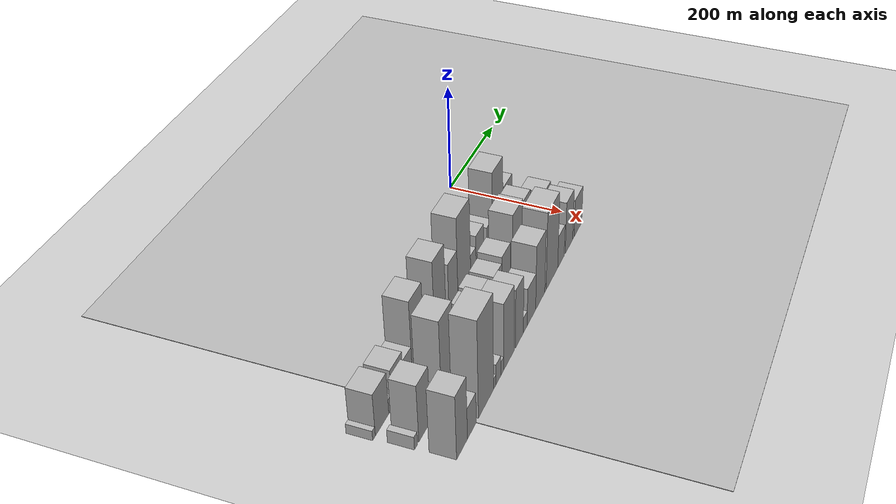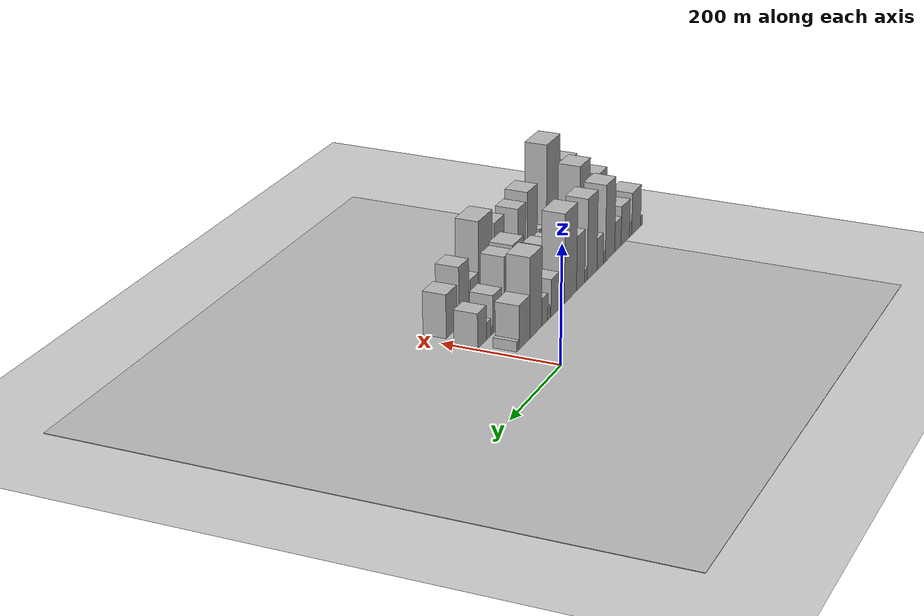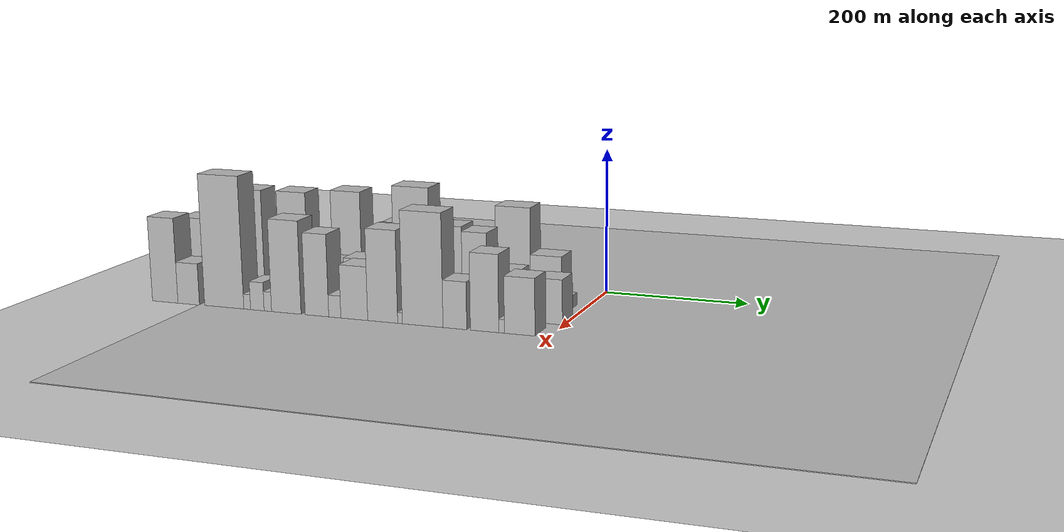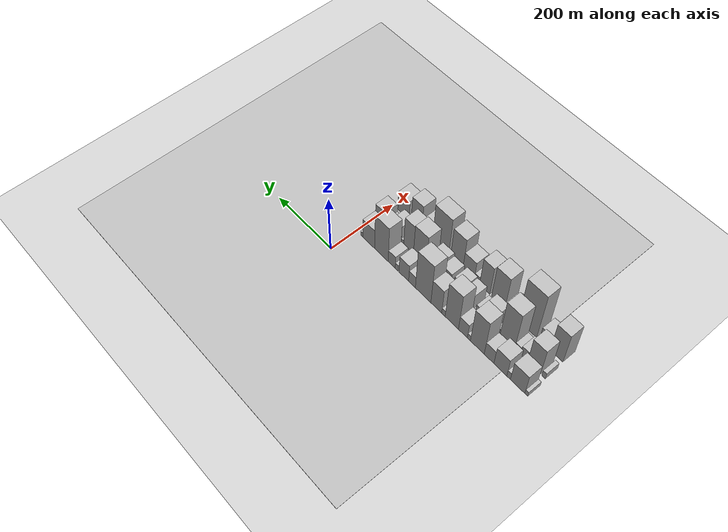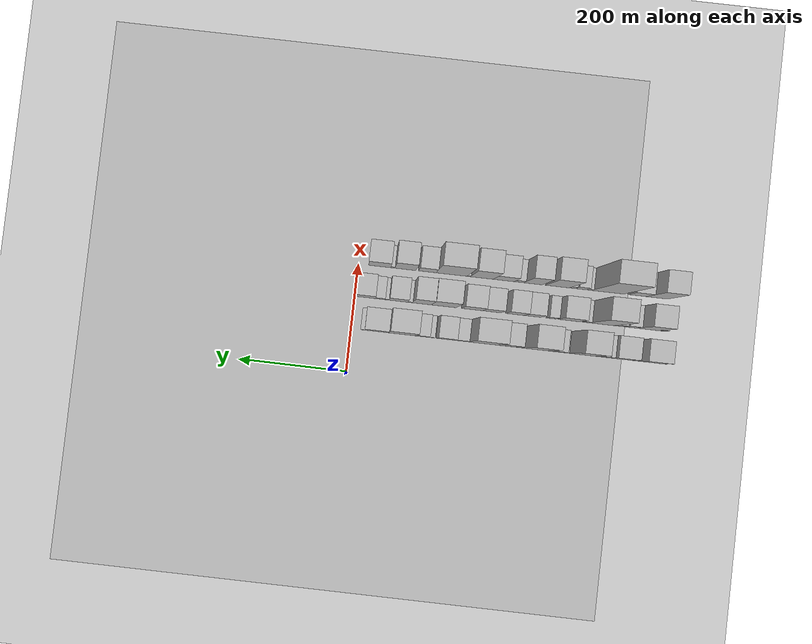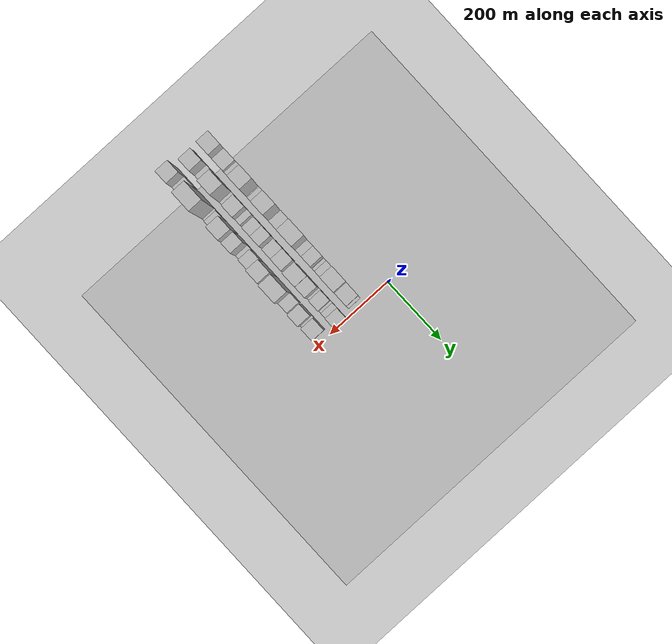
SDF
<sdf version="1.6">
 <world name="default">
  <include><name>ground_plane_1</name><uri>model://HANNAS_ground_plane</uri></include>
  <include>
   <name>ground_plane_2</name>
   <uri>model://HANNAS_ground_plane</uri>
   <pose>100 0 0  0 0 0</pose>
  </include>
  <model name="building_1">
   <static>1</static>
   <pose>100.0000 -575.5861 0 0.000000 0.000000 0.000000</pose>
   <link name="link">
    <pose>0 0 9.00 0 0 0</pose>
    <collision name="collision"><geometry><box><size>40.0000 8.8277 18.0000</size></box></geometry></collision>
    <visual name="visual">
     <cast_shadows>0</cast_shadows>
     <geometry><box><size>40.0000 8.8277 18.0000</size></box></geometry>
     <material>
      <script>
       <uri>model://HANNAS_wall/materials/scripts</uri>
       <uri>model://HANNAS_wall/materials/textures</uri>
       <name>vrc/HANNAS_wall</name>
      </script>
     </material>
    </visual>
   </link>
  </model>
  <model name="building_2">
   <static>1</static>
   <pose>100.0000 -548.8549 0 0.000000 0.000000 0.000000</pose>
   <link name="link">
    <pose>0 0 39.00 0 0 0</pose>
    <collision name="collision"><geometry><box><size>40.0000 44.6348 78.0000</size></box></geometry></collision>
    <visual name="visual">
     <cast_shadows>0</cast_shadows>
     <geometry><box><size>40.0000 44.6348 78.0000</size></box></geometry>
     <material>
      <script>
       <uri>model://HANNAS_wall/materials/scripts</uri>
       <uri>model://HANNAS_wall/materials/textures</uri>
       <name>vrc/HANNAS_wall</name>
      </script>
     </material>
    </visual>
   </link>
  </model>
  <model name="building_3">
   <static>1</static>
   <pose>100.0000 -520.9518 0 0.000000 0.000000 0.000000</pose>
   <link name="link">
    <pose>0 0 13.50 0 0 0</pose>
    <collision name="collision"><geometry><box><size>40.0000 11.1714 27.0000</size></box></geometry></collision>
    <visual name="visual">
     <cast_shadows>0</cast_shadows>
     <geometry><box><size>40.0000 11.1714 27.0000</size></box></geometry>
     <material>
      <script>
       <uri>model://HANNAS_wall/materials/scripts</uri>
       <uri>model://HANNAS_wall/materials/textures</uri>
       <name>vrc/HANNAS_wall</name>
      </script>
     </material>
    </visual>
   </link>
  </model>
  <model name="building_4">
   <static>1</static>
   <pose>100.0000 -495.0669 0 0.000000 0.000000 0.000000</pose>
   <link name="link">
    <pose>0 0 36.00 0 0 0</pose>
    <collision name="collision"><geometry><box><size>40.0000 40.5984 72.0000</size></box></geometry></collision>
    <visual name="visual">
     <cast_shadows>0</cast_shadows>
     <geometry><box><size>40.0000 40.5984 72.0000</size></box></geometry>
     <material>
      <script>
       <uri>model://HANNAS_wall/materials/scripts</uri>
       <uri>model://HANNAS_wall/materials/textures</uri>
       <name>vrc/HANNAS_wall</name>
      </script>
     </material>
    </visual>
   </link>
  </model>
  <model name="building_5">
   <static>1</static>
   <pose>100.0000 -459.3579 0 0.000000 0.000000 0.000000</pose>
   <link name="link">
    <pose>0 0 27.00 0 0 0</pose>
    <collision name="collision"><geometry><box><size>40.0000 30.8197 54.0000</size></box></geometry></collision>
    <visual name="visual">
     <cast_shadows>0</cast_shadows>
     <geometry><box><size>40.0000 30.8197 54.0000</size></box></geometry>
     <material>
      <script>
       <uri>model://HANNAS_wall/materials/scripts</uri>
       <uri>model://HANNAS_wall/materials/textures</uri>
       <name>vrc/HANNAS_wall</name>
      </script>
     </material>
    </visual>
   </link>
  </model>
  <model name="building_6">
   <static>1</static>
   <pose>100.0000 -421.6280 0 0.000000 0.000000 0.000000</pose>
   <link name="link">
    <pose>0 0 69.00 0 0 0</pose>
    <collision name="collision"><geometry><box><size>40.0000 44.6402 138.0000</size></box></geometry></collision>
    <visual name="visual">
     <cast_shadows>0</cast_shadows>
     <geometry><box><size>40.0000 44.6402 138.0000</size></box></geometry>
     <material>
      <script>
       <uri>model://HANNAS_wall/materials/scripts</uri>
       <uri>model://HANNAS_wall/materials/textures</uri>
       <name>vrc/HANNAS_wall</name>
      </script>
     </material>
    </visual>
   </link>
  </model>
  <model name="building_7">
   <static>1</static>
   <pose>100.0000 -394.4389 0 0.000000 0.000000 0.000000</pose>
   <link name="link">
    <pose>0 0 10.50 0 0 0</pose>
    <collision name="collision"><geometry><box><size>40.0000 9.7380 21.0000</size></box></geometry></collision>
    <visual name="visual">
     <cast_shadows>0</cast_shadows>
     <geometry><box><size>40.0000 9.7380 21.0000</size></box></geometry>
     <material>
      <script>
       <uri>model://HANNAS_wall/materials/scripts</uri>
       <uri>model://HANNAS_wall/materials/textures</uri>
       <name>vrc/HANNAS_wall</name>
      </script>
     </material>
    </visual>
   </link>
  </model>
  <model name="building_8">
   <static>1</static>
   <pose>100.0000 -374.8891 0 0.000000 0.000000 0.000000</pose>
   <link name="link">
    <pose>0 0 28.50 0 0 0</pose>
    <collision name="collision"><geometry><box><size>40.0000 29.3615 57.0000</size></box></geometry></collision>
    <visual name="visual">
     <cast_shadows>0</cast_shadows>
     <geometry><box><size>40.0000 29.3615 57.0000</size></box></geometry>
     <material>
      <script>
       <uri>model://HANNAS_wall/materials/scripts</uri>
       <uri>model://HANNAS_wall/materials/textures</uri>
       <name>vrc/HANNAS_wall</name>
      </script>
     </material>
    </visual>
   </link>
  </model>
  <model name="building_9">
   <static>1</static>
   <pose>100.0000 -338.0210 0 0.000000 0.000000 0.000000</pose>
   <link name="link">
    <pose>0 0 72.00 0 0 0</pose>
    <collision name="collision"><geometry><box><size>40.0000 44.3749 144.0000</size></box></geometry></collision>
    <visual name="visual">
     <cast_shadows>0</cast_shadows>
     <geometry><box><size>40.0000 44.3749 144.0000</size></box></geometry>
     <material>
      <script>
       <uri>model://HANNAS_wall/materials/scripts</uri>
       <uri>model://HANNAS_wall/materials/textures</uri>
       <name>vrc/HANNAS_wall</name>
      </script>
     </material>
    </visual>
   </link>
  </model>
  <model name="building_10">
   <static>1</static>
   <pose>100.0000 -310.0558 0 0.000000 0.000000 0.000000</pose>
   <link name="link">
    <pose>0 0 12.00 0 0 0</pose>
    <collision name="collision"><geometry><box><size>40.0000 11.5555 24.0000</size></box></geometry></collision>
    <visual name="visual">
     <cast_shadows>0</cast_shadows>
     <geometry><box><size>40.0000 11.5555 24.0000</size></box></geometry>
     <material>
      <script>
       <uri>model://HANNAS_wall/materials/scripts</uri>
       <uri>model://HANNAS_wall/materials/textures</uri>
       <name>vrc/HANNAS_wall</name>
      </script>
     </material>
    </visual>
   </link>
  </model>
  <model name="building_11">
   <static>1</static>
   <pose>100.0000 -285.9125 0 0.000000 0.000000 0.000000</pose>
   <link name="link">
    <pose>0 0 48.00 0 0 0</pose>
    <collision name="collision"><geometry><box><size>40.0000 36.7311 96.0000</size></box></geometry></collision>
    <visual name="visual">
     <cast_shadows>0</cast_shadows>
     <geometry><box><size>40.0000 36.7311 96.0000</size></box></geometry>
     <material>
      <script>
       <uri>model://HANNAS_wall/materials/scripts</uri>
       <uri>model://HANNAS_wall/materials/textures</uri>
       <name>vrc/HANNAS_wall</name>
      </script>
     </material>
    </visual>
   </link>
  </model>
  <model name="building_12">
   <static>1</static>
   <pose>100.0000 -240.7987 0 0.000000 0.000000 0.000000</pose>
   <link name="link">
    <pose>0 0 78.00 0 0 0</pose>
    <collision name="collision"><geometry><box><size>40.0000 53.4963 156.0000</size></box></geometry></collision>
    <visual name="visual">
     <cast_shadows>0</cast_shadows>
     <geometry><box><size>40.0000 53.4963 156.0000</size></box></geometry>
     <material>
      <script>
       <uri>model://HANNAS_wall/materials/scripts</uri>
       <uri>model://HANNAS_wall/materials/textures</uri>
       <name>vrc/HANNAS_wall</name>
      </script>
     </material>
    </visual>
   </link>
  </model>
  <model name="building_13">
   <static>1</static>
   <pose>100.0000 -202.2529 0 0.000000 0.000000 0.000000</pose>
   <link name="link">
    <pose>0 0 22.50 0 0 0</pose>
    <collision name="collision"><geometry><box><size>40.0000 23.5954 45.0000</size></box></geometry></collision>
    <visual name="visual">
     <cast_shadows>0</cast_shadows>
     <geometry><box><size>40.0000 23.5954 45.0000</size></box></geometry>
     <material>
      <script>
       <uri>model://HANNAS_wall/materials/scripts</uri>
       <uri>model://HANNAS_wall/materials/textures</uri>
       <name>vrc/HANNAS_wall</name>
      </script>
     </material>
    </visual>
   </link>
  </model>
  <model name="building_14">
   <static>1</static>
   <pose>100.0000 -173.3818 0 0.000000 0.000000 0.000000</pose>
   <link name="link">
    <pose>0 0 33.00 0 0 0</pose>
    <collision name="collision"><geometry><box><size>40.0000 34.1467 66.0000</size></box></geometry></collision>
    <visual name="visual">
     <cast_shadows>0</cast_shadows>
     <geometry><box><size>40.0000 34.1467 66.0000</size></box></geometry>
     <material>
      <script>
       <uri>model://HANNAS_wall/materials/scripts</uri>
       <uri>model://HANNAS_wall/materials/textures</uri>
       <name>vrc/HANNAS_wall</name>
      </script>
     </material>
    </visual>
   </link>
  </model>
  <model name="building_15">
   <static>1</static>
   <pose>100.0000 -148.1046 0 0.000000 0.000000 0.000000</pose>
   <link name="link">
    <pose>0 0 12.00 0 0 0</pose>
    <collision name="collision"><geometry><box><size>40.0000 10.4078 24.0000</size></box></geometry></collision>
    <visual name="visual">
     <cast_shadows>0</cast_shadows>
     <geometry><box><size>40.0000 10.4078 24.0000</size></box></geometry>
     <material>
      <script>
       <uri>model://HANNAS_wall/materials/scripts</uri>
       <uri>model://HANNAS_wall/materials/textures</uri>
       <name>vrc/HANNAS_wall</name>
      </script>
     </material>
    </visual>
   </link>
  </model>
  <model name="building_16">
   <static>1</static>
   <pose>100.0000 -130.3756 0 0.000000 0.000000 0.000000</pose>
   <link name="link">
    <pose>0 0 24.00 0 0 0</pose>
    <collision name="collision"><geometry><box><size>40.0000 25.0502 48.0000</size></box></geometry></collision>
    <visual name="visual">
     <cast_shadows>0</cast_shadows>
     <geometry><box><size>40.0000 25.0502 48.0000</size></box></geometry>
     <material>
      <script>
       <uri>model://HANNAS_wall/materials/scripts</uri>
       <uri>model://HANNAS_wall/materials/textures</uri>
       <name>vrc/HANNAS_wall</name>
      </script>
     </material>
    </visual>
   </link>
  </model>
  <model name="building_17">
   <static>1</static>
   <pose>100.0000 -93.1623 0 0.000000 0.000000 0.000000</pose>
   <link name="link">
    <pose>0 0 69.00 0 0 0</pose>
    <collision name="collision"><geometry><box><size>40.0000 49.3765 138.0000</size></box></geometry></collision>
    <visual name="visual">
     <cast_shadows>0</cast_shadows>
     <geometry><box><size>40.0000 49.3765 138.0000</size></box></geometry>
     <material>
      <script>
       <uri>model://HANNAS_wall/materials/scripts</uri>
       <uri>model://HANNAS_wall/materials/textures</uri>
       <name>vrc/HANNAS_wall</name>
      </script>
     </material>
    </visual>
   </link>
  </model>
  <model name="building_18">
   <static>1</static>
   <pose>100.0000 -46.5483 0 0.000000 0.000000 0.000000</pose>
   <link name="link">
    <pose>0 0 37.50 0 0 0</pose>
    <collision name="collision"><geometry><box><size>40.0000 43.8515 75.0000</size></box></geometry></collision>
    <visual name="visual">
     <cast_shadows>0</cast_shadows>
     <geometry><box><size>40.0000 43.8515 75.0000</size></box></geometry>
     <material>
      <script>
       <uri>model://HANNAS_wall/materials/scripts</uri>
       <uri>model://HANNAS_wall/materials/textures</uri>
       <name>vrc/HANNAS_wall</name>
      </script>
     </material>
    </visual>
   </link>
  </model>
  <model name="building_19">
   <static>1</static>
   <pose>100.0000 -20.6367 0 0.000000 0.000000 0.000000</pose>
   <link name="link">
    <pose>0 0 9.00 0 0 0</pose>
    <collision name="collision"><geometry><box><size>40.0000 7.9717 18.0000</size></box></geometry></collision>
    <visual name="visual">
     <cast_shadows>0</cast_shadows>
     <geometry><box><size>40.0000 7.9717 18.0000</size></box></geometry>
     <material>
      <script>
       <uri>model://HANNAS_wall/materials/scripts</uri>
       <uri>model://HANNAS_wall/materials/textures</uri>
       <name>vrc/HANNAS_wall</name>
      </script>
     </material>
    </visual>
   </link>
  </model>
  <model name="building_36">
   <static>1</static>
   <pose>160.0000 -570.5280 0 0.000000 0.000000 0.000000</pose>
   <link name="link">
    <pose>0 0 12.00 0 0 0</pose>
    <collision name="collision"><geometry><box><size>40.0000 10.9439 24.0000</size></box></geometry></collision>
    <visual name="visual">
     <cast_shadows>0</cast_shadows>
     <geometry><box><size>40.0000 10.9439 24.0000</size></box></geometry>
     <material>
      <script>
       <uri>model://HANNAS_wall/materials/scripts</uri>
       <uri>model://HANNAS_wall/materials/textures</uri>
       <name>vrc/HANNAS_wall</name>
      </script>
     </material>
    </visual>
   </link>
  </model>
  <model name="building_37">
   <static>1</static>
   <pose>160.0000 -540.9454 0 0.000000 0.000000 0.000000</pose>
   <link name="link">
    <pose>0 0 52.50 0 0 0</pose>
    <collision name="collision"><geometry><box><size>40.0000 40.2214 105.0000</size></box></geometry></collision>
    <visual name="visual">
     <cast_shadows>0</cast_shadows>
     <geometry><box><size>40.0000 40.2214 105.0000</size></box></geometry>
     <material>
      <script>
       <uri>model://HANNAS_wall/materials/scripts</uri>
       <uri>model://HANNAS_wall/materials/textures</uri>
       <name>vrc/HANNAS_wall</name>
      </script>
     </material>
    </visual>
   </link>
  </model>
  <model name="building_38">
   <static>1</static>
   <pose>160.0000 -509.6974 0 0.000000 0.000000 0.000000</pose>
   <link name="link">
    <pose>0 0 21.00 0 0 0</pose>
    <collision name="collision"><geometry><box><size>40.0000 22.2746 42.0000</size></box></geometry></collision>
    <visual name="visual">
     <cast_shadows>0</cast_shadows>
     <geometry><box><size>40.0000 22.2746 42.0000</size></box></geometry>
     <material>
      <script>
       <uri>model://HANNAS_wall/materials/scripts</uri>
       <uri>model://HANNAS_wall/materials/textures</uri>
       <name>vrc/HANNAS_wall</name>
      </script>
     </material>
    </visual>
   </link>
  </model>
  <model name="building_39">
   <static>1</static>
   <pose>160.0000 -489.3396 0 0.000000 0.000000 0.000000</pose>
   <link name="link">
    <pose>0 0 16.50 0 0 0</pose>
    <collision name="collision"><geometry><box><size>40.0000 18.4410 33.0000</size></box></geometry></collision>
    <visual name="visual">
     <cast_shadows>0</cast_shadows>
     <geometry><box><size>40.0000 18.4410 33.0000</size></box></geometry>
     <material>
      <script>
       <uri>model://HANNAS_wall/materials/scripts</uri>
       <uri>model://HANNAS_wall/materials/textures</uri>
       <name>vrc/HANNAS_wall</name>
      </script>
     </material>
    </visual>
   </link>
  </model>
  <model name="building_40">
   <static>1</static>
   <pose>160.0000 -456.8184 0 0.000000 0.000000 0.000000</pose>
   <link name="link">
    <pose>0 0 75.00 0 0 0</pose>
    <collision name="collision"><geometry><box><size>40.0000 46.6015 150.0000</size></box></geometry></collision>
    <visual name="visual">
     <cast_shadows>0</cast_shadows>
     <geometry><box><size>40.0000 46.6015 150.0000</size></box></geometry>
     <material>
      <script>
       <uri>model://HANNAS_wall/materials/scripts</uri>
       <uri>model://HANNAS_wall/materials/textures</uri>
       <name>vrc/HANNAS_wall</name>
      </script>
     </material>
    </visual>
   </link>
  </model>
  <model name="building_41">
   <static>1</static>
   <pose>160.0000 -427.4346 0 0.000000 0.000000 0.000000</pose>
   <link name="link">
    <pose>0 0 13.50 0 0 0</pose>
    <collision name="collision"><geometry><box><size>40.0000 12.1661 27.0000</size></box></geometry></collision>
    <visual name="visual">
     <cast_shadows>0</cast_shadows>
     <geometry><box><size>40.0000 12.1661 27.0000</size></box></geometry>
     <material>
      <script>
       <uri>model://HANNAS_wall/materials/scripts</uri>
       <uri>model://HANNAS_wall/materials/textures</uri>
       <name>vrc/HANNAS_wall</name>
      </script>
     </material>
    </visual>
   </link>
  </model>
  <model name="building_42">
   <static>1</static>
   <pose>160.0000 -395.9579 0 0.000000 0.000000 0.000000</pose>
   <link name="link">
    <pose>0 0 34.50 0 0 0</pose>
    <collision name="collision"><geometry><box><size>40.0000 40.7873 69.0000</size></box></geometry></collision>
    <visual name="visual">
     <cast_shadows>0</cast_shadows>
     <geometry><box><size>40.0000 40.7873 69.0000</size></box></geometry>
     <material>
      <script>
       <uri>model://HANNAS_wall/materials/scripts</uri>
       <uri>model://HANNAS_wall/materials/textures</uri>
       <name>vrc/HANNAS_wall</name>
      </script>
     </material>
    </visual>
   </link>
  </model>
  <model name="building_43">
   <static>1</static>
   <pose>160.0000 -363.3839 0 0.000000 0.000000 0.000000</pose>
   <link name="link">
    <pose>0 0 18.00 0 0 0</pose>
    <collision name="collision"><geometry><box><size>40.0000 18.3607 36.0000</size></box></geometry></collision>
    <visual name="visual">
     <cast_shadows>0</cast_shadows>
     <geometry><box><size>40.0000 18.3607 36.0000</size></box></geometry>
     <material>
      <script>
       <uri>model://HANNAS_wall/materials/scripts</uri>
       <uri>model://HANNAS_wall/materials/textures</uri>
       <name>vrc/HANNAS_wall</name>
      </script>
     </material>
    </visual>
   </link>
  </model>
  <model name="building_44">
   <static>1</static>
   <pose>160.0000 -328.5794 0 0.000000 0.000000 0.000000</pose>
   <link name="link">
    <pose>0 0 30.00 0 0 0</pose>
    <collision name="collision"><geometry><box><size>40.0000 31.2483 60.0000</size></box></geometry></collision>
    <visual name="visual">
     <cast_shadows>0</cast_shadows>
     <geometry><box><size>40.0000 31.2483 60.0000</size></box></geometry>
     <material>
      <script>
       <uri>model://HANNAS_wall/materials/scripts</uri>
       <uri>model://HANNAS_wall/materials/textures</uri>
       <name>vrc/HANNAS_wall</name>
      </script>
     </material>
    </visual>
   </link>
  </model>
  <model name="building_45">
   <static>1</static>
   <pose>160.0000 -296.0275 0 0.000000 0.000000 0.000000</pose>
   <link name="link">
    <pose>0 0 33.00 0 0 0</pose>
    <collision name="collision"><geometry><box><size>40.0000 33.8556 66.0000</size></box></geometry></collision>
    <visual name="visual">
     <cast_shadows>0</cast_shadows>
     <geometry><box><size>40.0000 33.8556 66.0000</size></box></geometry>
     <material>
      <script>
       <uri>model://HANNAS_wall/materials/scripts</uri>
       <uri>model://HANNAS_wall/materials/textures</uri>
       <name>vrc/HANNAS_wall</name>
      </script>
     </material>
    </visual>
   </link>
  </model>
  <model name="building_46">
   <static>1</static>
   <pose>160.0000 -252.9372 0 0.000000 0.000000 0.000000</pose>
   <link name="link">
    <pose>0 0 31.50 0 0 0</pose>
    <collision name="collision"><geometry><box><size>40.0000 34.3250 63.0000</size></box></geometry></collision>
    <visual name="visual">
     <cast_shadows>0</cast_shadows>
     <geometry><box><size>40.0000 34.3250 63.0000</size></box></geometry>
     <material>
      <script>
       <uri>model://HANNAS_wall/materials/scripts</uri>
       <uri>model://HANNAS_wall/materials/textures</uri>
       <name>vrc/HANNAS_wall</name>
      </script>
     </material>
    </visual>
   </link>
  </model>
  <model name="building_47">
   <static>1</static>
   <pose>160.0000 -216.3550 0 0.000000 0.000000 0.000000</pose>
   <link name="link">
    <pose>0 0 37.50 0 0 0</pose>
    <collision name="collision"><geometry><box><size>40.0000 38.8393 75.0000</size></box></geometry></collision>
    <visual name="visual">
     <cast_shadows>0</cast_shadows>
     <geometry><box><size>40.0000 38.8393 75.0000</size></box></geometry>
     <material>
      <script>
       <uri>model://HANNAS_wall/materials/scripts</uri>
       <uri>model://HANNAS_wall/materials/textures</uri>
       <name>vrc/HANNAS_wall</name>
      </script>
     </material>
    </visual>
   </link>
  </model>
  <model name="building_48">
   <static>1</static>
   <pose>160.0000 -164.1275 0 0.000000 0.000000 0.000000</pose>
   <link name="link">
    <pose>0 0 60.00 0 0 0</pose>
    <collision name="collision"><geometry><box><size>40.0000 45.6158 120.0000</size></box></geometry></collision>
    <visual name="visual">
     <cast_shadows>0</cast_shadows>
     <geometry><box><size>40.0000 45.6158 120.0000</size></box></geometry>
     <material>
      <script>
       <uri>model://HANNAS_wall/materials/scripts</uri>
       <uri>model://HANNAS_wall/materials/textures</uri>
       <name>vrc/HANNAS_wall</name>
      </script>
     </material>
    </visual>
   </link>
  </model>
  <model name="building_49">
   <static>1</static>
   <pose>160.0000 -123.8702 0 0.000000 0.000000 0.000000</pose>
   <link name="link">
    <pose>0 0 57.00 0 0 0</pose>
    <collision name="collision"><geometry><box><size>40.0000 34.8988 114.0000</size></box></geometry></collision>
    <visual name="visual">
     <cast_shadows>0</cast_shadows>
     <geometry><box><size>40.0000 34.8988 114.0000</size></box></geometry>
     <material>
      <script>
       <uri>model://HANNAS_wall/materials/scripts</uri>
       <uri>model://HANNAS_wall/materials/textures</uri>
       <name>vrc/HANNAS_wall</name>
      </script>
     </material>
    </visual>
   </link>
  </model>
  <model name="building_50">
   <static>1</static>
   <pose>160.0000 -102.0701 0 0.000000 0.000000 0.000000</pose>
   <link name="link">
    <pose>0 0 9.00 0 0 0</pose>
    <collision name="collision"><geometry><box><size>40.0000 8.7015 18.0000</size></box></geometry></collision>
    <visual name="visual">
     <cast_shadows>0</cast_shadows>
     <geometry><box><size>40.0000 8.7015 18.0000</size></box></geometry>
     <material>
      <script>
       <uri>model://HANNAS_wall/materials/scripts</uri>
       <uri>model://HANNAS_wall/materials/textures</uri>
       <name>vrc/HANNAS_wall</name>
      </script>
     </material>
    </visual>
   </link>
  </model>
  <model name="building_51">
   <static>1</static>
   <pose>160.0000 -80.2887 0 0.000000 0.000000 0.000000</pose>
   <link name="link">
    <pose>0 0 33.00 0 0 0</pose>
    <collision name="collision"><geometry><box><size>40.0000 34.8612 66.0000</size></box></geometry></collision>
    <visual name="visual">
     <cast_shadows>0</cast_shadows>
     <geometry><box><size>40.0000 34.8612 66.0000</size></box></geometry>
     <material>
      <script>
       <uri>model://HANNAS_wall/materials/scripts</uri>
       <uri>model://HANNAS_wall/materials/textures</uri>
       <name>vrc/HANNAS_wall</name>
      </script>
     </material>
    </visual>
   </link>
  </model>
  <model name="building_52">
   <static>1</static>
   <pose>160.0000 -59.2380 0 0.000000 0.000000 0.000000</pose>
   <link name="link">
    <pose>0 0 7.50 0 0 0</pose>
    <collision name="collision"><geometry><box><size>40.0000 7.2402 15.0000</size></box></geometry></collision>
    <visual name="visual">
     <cast_shadows>0</cast_shadows>
     <geometry><box><size>40.0000 7.2402 15.0000</size></box></geometry>
     <material>
      <script>
       <uri>model://HANNAS_wall/materials/scripts</uri>
       <uri>model://HANNAS_wall/materials/textures</uri>
       <name>vrc/HANNAS_wall</name>
      </script>
     </material>
    </visual>
   </link>
  </model>
  <model name="building_53">
   <static>1</static>
   <pose>160.0000 -46.7216 0 0.000000 0.000000 0.000000</pose>
   <link name="link">
    <pose>0 0 15.00 0 0 0</pose>
    <collision name="collision"><geometry><box><size>40.0000 17.7927 30.0000</size></box></geometry></collision>
    <visual name="visual">
     <cast_shadows>0</cast_shadows>
     <geometry><box><size>40.0000 17.7927 30.0000</size></box></geometry>
     <material>
      <script>
       <uri>model://HANNAS_wall/materials/scripts</uri>
       <uri>model://HANNAS_wall/materials/textures</uri>
       <name>vrc/HANNAS_wall</name>
      </script>
     </material>
    </visual>
   </link>
  </model>
  <model name="building_54">
   <static>1</static>
   <pose>160.0000 -20.2599 0 0.000000 0.000000 0.000000</pose>
   <link name="link">
    <pose>0 0 30.00 0 0 0</pose>
    <collision name="collision"><geometry><box><size>40.0000 35.1307 60.0000</size></box></geometry></collision>
    <visual name="visual">
     <cast_shadows>0</cast_shadows>
     <geometry><box><size>40.0000 35.1307 60.0000</size></box></geometry>
     <material>
      <script>
       <uri>model://HANNAS_wall/materials/scripts</uri>
       <uri>model://HANNAS_wall/materials/textures</uri>
       <name>vrc/HANNAS_wall</name>
      </script>
     </material>
    </visual>
   </link>
  </model>
  <model name="building_75">
   <static>1</static>
   <pose>220.0000 -553.1102 0 0.000000 0.000000 0.000000</pose>
   <link name="link">
    <pose>0 0 58.50 0 0 0</pose>
    <collision name="collision"><geometry><box><size>40.0000 39.7797 117.0000</size></box></geometry></collision>
    <visual name="visual">
     <cast_shadows>0</cast_shadows>
     <geometry><box><size>40.0000 39.7797 117.0000</size></box></geometry>
     <material>
      <script>
       <uri>model://HANNAS_wall/materials/scripts</uri>
       <uri>model://HANNAS_wall/materials/textures</uri>
       <name>vrc/HANNAS_wall</name>
      </script>
     </material>
    </visual>
   </link>
  </model>
  <model name="building_76">
   <static>1</static>
   <pose>220.0000 -516.5424 0 0.000000 0.000000 0.000000</pose>
   <link name="link">
    <pose>0 0 28.50 0 0 0</pose>
    <collision name="collision"><geometry><box><size>40.0000 33.3559 57.0000</size></box></geometry></collision>
    <visual name="visual">
     <cast_shadows>0</cast_shadows>
     <geometry><box><size>40.0000 33.3559 57.0000</size></box></geometry>
     <material>
      <script>
       <uri>model://HANNAS_wall/materials/scripts</uri>
       <uri>model://HANNAS_wall/materials/textures</uri>
       <name>vrc/HANNAS_wall</name>
      </script>
     </material>
    </visual>
   </link>
  </model>
  <model name="building_77">
   <static>1</static>
   <pose>220.0000 -462.0050 0 0.000000 0.000000 0.000000</pose>
   <link name="link">
    <pose>0 0 90.00 0 0 0</pose>
    <collision name="collision"><geometry><box><size>40.0000 59.7188 180.0000</size></box></geometry></collision>
    <visual name="visual">
     <cast_shadows>0</cast_shadows>
     <geometry><box><size>40.0000 59.7188 180.0000</size></box></geometry>
     <material>
      <script>
       <uri>model://HANNAS_wall/materials/scripts</uri>
       <uri>model://HANNAS_wall/materials/textures</uri>
       <name>vrc/HANNAS_wall</name>
      </script>
     </material>
    </visual>
   </link>
  </model>
  <model name="building_78">
   <static>1</static>
   <pose>220.0000 -427.0938 0 0.000000 0.000000 0.000000</pose>
   <link name="link">
    <pose>0 0 10.50 0 0 0</pose>
    <collision name="collision"><geometry><box><size>40.0000 10.1037 21.0000</size></box></geometry></collision>
    <visual name="visual">
     <cast_shadows>0</cast_shadows>
     <geometry><box><size>40.0000 10.1037 21.0000</size></box></geometry>
     <material>
      <script>
       <uri>model://HANNAS_wall/materials/scripts</uri>
       <uri>model://HANNAS_wall/materials/textures</uri>
       <name>vrc/HANNAS_wall</name>
      </script>
     </material>
    </visual>
   </link>
  </model>
  <model name="building_79">
   <static>1</static>
   <pose>220.0000 -411.8643 0 0.000000 0.000000 0.000000</pose>
   <link name="link">
    <pose>0 0 19.50 0 0 0</pose>
    <collision name="collision"><geometry><box><size>40.0000 20.3552 39.0000</size></box></geometry></collision>
    <visual name="visual">
     <cast_shadows>0</cast_shadows>
     <geometry><box><size>40.0000 20.3552 39.0000</size></box></geometry>
     <material>
      <script>
       <uri>model://HANNAS_wall/materials/scripts</uri>
       <uri>model://HANNAS_wall/materials/textures</uri>
       <name>vrc/HANNAS_wall</name>
      </script>
     </material>
    </visual>
   </link>
  </model>
  <model name="building_80">
   <static>1</static>
   <pose>220.0000 -396.1105 0 0.000000 0.000000 0.000000</pose>
   <link name="link">
    <pose>0 0 13.50 0 0 0</pose>
    <collision name="collision"><geometry><box><size>40.0000 11.1525 27.0000</size></box></geometry></collision>
    <visual name="visual">
     <cast_shadows>0</cast_shadows>
     <geometry><box><size>40.0000 11.1525 27.0000</size></box></geometry>
     <material>
      <script>
       <uri>model://HANNAS_wall/materials/scripts</uri>
       <uri>model://HANNAS_wall/materials/textures</uri>
       <name>vrc/HANNAS_wall</name>
      </script>
     </material>
    </visual>
   </link>
  </model>
  <model name="building_81">
   <static>1</static>
   <pose>220.0000 -368.6089 0 0.000000 0.000000 0.000000</pose>
   <link name="link">
    <pose>0 0 63.00 0 0 0</pose>
    <collision name="collision"><geometry><box><size>40.0000 43.8505 126.0000</size></box></geometry></collision>
    <visual name="visual">
     <cast_shadows>0</cast_shadows>
     <geometry><box><size>40.0000 43.8505 126.0000</size></box></geometry>
     <material>
      <script>
       <uri>model://HANNAS_wall/materials/scripts</uri>
       <uri>model://HANNAS_wall/materials/textures</uri>
       <name>vrc/HANNAS_wall</name>
      </script>
     </material>
    </visual>
   </link>
  </model>
  <model name="building_82">
   <static>1</static>
   <pose>220.0000 -323.4252 0 0.000000 0.000000 0.000000</pose>
   <link name="link">
    <pose>0 0 55.50 0 0 0</pose>
    <collision name="collision"><geometry><box><size>40.0000 34.5169 111.0000</size></box></geometry></collision>
    <visual name="visual">
     <cast_shadows>0</cast_shadows>
     <geometry><box><size>40.0000 34.5169 111.0000</size></box></geometry>
     <material>
      <script>
       <uri>model://HANNAS_wall/materials/scripts</uri>
       <uri>model://HANNAS_wall/materials/textures</uri>
       <name>vrc/HANNAS_wall</name>
      </script>
     </material>
    </visual>
   </link>
  </model>
  <model name="building_83">
   <static>1</static>
   <pose>220.0000 -297.4106 0 0.000000 0.000000 0.000000</pose>
   <link name="link">
    <pose>0 0 15.00 0 0 0</pose>
    <collision name="collision"><geometry><box><size>40.0000 17.5124 30.0000</size></box></geometry></collision>
    <visual name="visual">
     <cast_shadows>0</cast_shadows>
     <geometry><box><size>40.0000 17.5124 30.0000</size></box></geometry>
     <material>
      <script>
       <uri>model://HANNAS_wall/materials/scripts</uri>
       <uri>model://HANNAS_wall/materials/textures</uri>
       <name>vrc/HANNAS_wall</name>
      </script>
     </material>
    </visual>
   </link>
  </model>
  <model name="building_84">
   <static>1</static>
   <pose>220.0000 -269.2744 0 0.000000 0.000000 0.000000</pose>
   <link name="link">
    <pose>0 0 36.00 0 0 0</pose>
    <collision name="collision"><geometry><box><size>40.0000 38.7601 72.0000</size></box></geometry></collision>
    <visual name="visual">
     <cast_shadows>0</cast_shadows>
     <geometry><box><size>40.0000 38.7601 72.0000</size></box></geometry>
     <material>
      <script>
       <uri>model://HANNAS_wall/materials/scripts</uri>
       <uri>model://HANNAS_wall/materials/textures</uri>
       <name>vrc/HANNAS_wall</name>
      </script>
     </material>
    </visual>
   </link>
  </model>
  <model name="building_85">
   <static>1</static>
   <pose>220.0000 -228.5268 0 0.000000 0.000000 0.000000</pose>
   <link name="link">
    <pose>0 0 61.50 0 0 0</pose>
    <collision name="collision"><geometry><box><size>40.0000 42.7351 123.0000</size></box></geometry></collision>
    <visual name="visual">
     <cast_shadows>0</cast_shadows>
     <geometry><box><size>40.0000 42.7351 123.0000</size></box></geometry>
     <material>
      <script>
       <uri>model://HANNAS_wall/materials/scripts</uri>
       <uri>model://HANNAS_wall/materials/textures</uri>
       <name>vrc/HANNAS_wall</name>
      </script>
     </material>
    </visual>
   </link>
  </model>
  <model name="building_86">
   <static>1</static>
   <pose>220.0000 -203.9222 0 0.000000 0.000000 0.000000</pose>
   <link name="link">
    <pose>0 0 7.50 0 0 0</pose>
    <collision name="collision"><geometry><box><size>40.0000 6.4741 15.0000</size></box></geometry></collision>
    <visual name="visual">
     <cast_shadows>0</cast_shadows>
     <geometry><box><size>40.0000 6.4741 15.0000</size></box></geometry>
     <material>
      <script>
       <uri>model://HANNAS_wall/materials/scripts</uri>
       <uri>model://HANNAS_wall/materials/textures</uri>
       <name>vrc/HANNAS_wall</name>
      </script>
     </material>
    </visual>
   </link>
  </model>
  <model name="building_87">
   <static>1</static>
   <pose>220.0000 -172.1167 0 0.000000 0.000000 0.000000</pose>
   <link name="link">
    <pose>0 0 75.00 0 0 0</pose>
    <collision name="collision"><geometry><box><size>40.0000 57.1369 150.0000</size></box></geometry></collision>
    <visual name="visual">
     <cast_shadows>0</cast_shadows>
     <geometry><box><size>40.0000 57.1369 150.0000</size></box></geometry>
     <material>
      <script>
       <uri>model://HANNAS_wall/materials/scripts</uri>
       <uri>model://HANNAS_wall/materials/textures</uri>
       <name>vrc/HANNAS_wall</name>
      </script>
     </material>
    </visual>
   </link>
  </model>
  <model name="building_88">
   <static>1</static>
   <pose>220.0000 -127.1598 0 0.000000 0.000000 0.000000</pose>
   <link name="link">
    <pose>0 0 31.50 0 0 0</pose>
    <collision name="collision"><geometry><box><size>40.0000 32.7769 63.0000</size></box></geometry></collision>
    <visual name="visual">
     <cast_shadows>0</cast_shadows>
     <geometry><box><size>40.0000 32.7769 63.0000</size></box></geometry>
     <material>
      <script>
       <uri>model://HANNAS_wall/materials/scripts</uri>
       <uri>model://HANNAS_wall/materials/textures</uri>
       <name>vrc/HANNAS_wall</name>
      </script>
     </material>
    </visual>
   </link>
  </model>
  <model name="building_89">
   <static>1</static>
   <pose>220.0000 -86.3846 0 0.000000 0.000000 0.000000</pose>
   <link name="link">
    <pose>0 0 51.00 0 0 0</pose>
    <collision name="collision"><geometry><box><size>40.0000 38.7735 102.0000</size></box></geometry></collision>
    <visual name="visual">
     <cast_shadows>0</cast_shadows>
     <geometry><box><size>40.0000 38.7735 102.0000</size></box></geometry>
     <material>
      <script>
       <uri>model://HANNAS_wall/materials/scripts</uri>
       <uri>model://HANNAS_wall/materials/textures</uri>
       <name>vrc/HANNAS_wall</name>
      </script>
     </material>
    </visual>
   </link>
  </model>
  <model name="building_90">
   <static>1</static>
   <pose>220.0000 -63.2119 0 0.000000 0.000000 0.000000</pose>
   <link name="link">
    <pose>0 0 9.00 0 0 0</pose>
    <collision name="collision"><geometry><box><size>40.0000 7.5721 18.0000</size></box></geometry></collision>
    <visual name="visual">
     <cast_shadows>0</cast_shadows>
     <geometry><box><size>40.0000 7.5721 18.0000</size></box></geometry>
     <material>
      <script>
       <uri>model://HANNAS_wall/materials/scripts</uri>
       <uri>model://HANNAS_wall/materials/textures</uri>
       <name>vrc/HANNAS_wall</name>
      </script>
     </material>
    </visual>
   </link>
  </model>
  <model name="building_91">
   <static>1</static>
   <pose>220.0000 -38.8473 0 0.000000 0.000000 0.000000</pose>
   <link name="link">
    <pose>0 0 37.50 0 0 0</pose>
    <collision name="collision"><geometry><box><size>40.0000 41.1570 75.0000</size></box></geometry></collision>
    <visual name="visual">
     <cast_shadows>0</cast_shadows>
     <geometry><box><size>40.0000 41.1570 75.0000</size></box></geometry>
     <material>
      <script>
       <uri>model://HANNAS_wall/materials/scripts</uri>
       <uri>model://HANNAS_wall/materials/textures</uri>
       <name>vrc/HANNAS_wall</name>
      </script>
     </material>
    </visual>
   </link>
  </model>
 </world>
</sdf>
